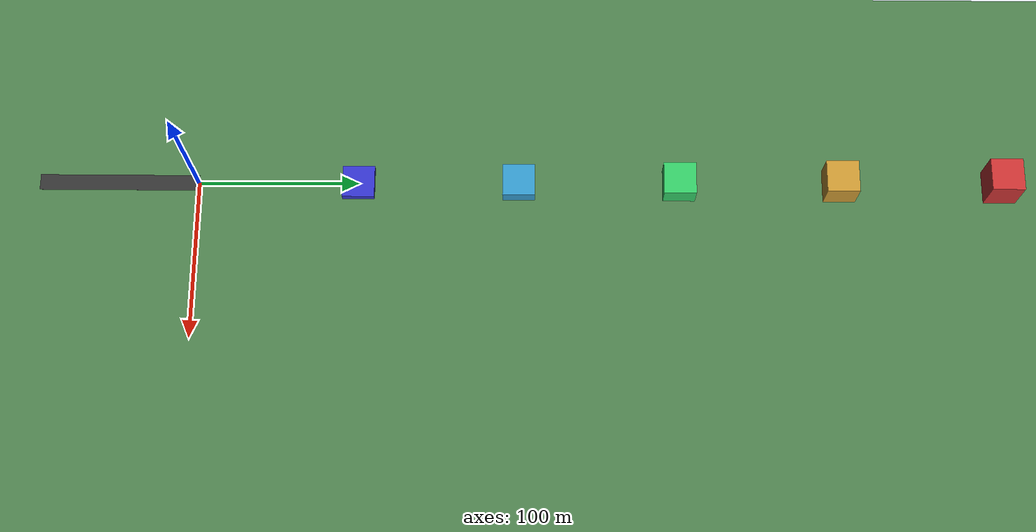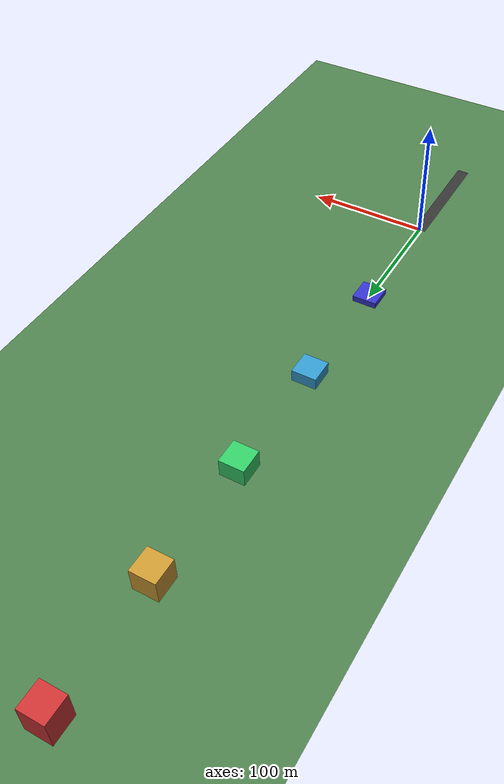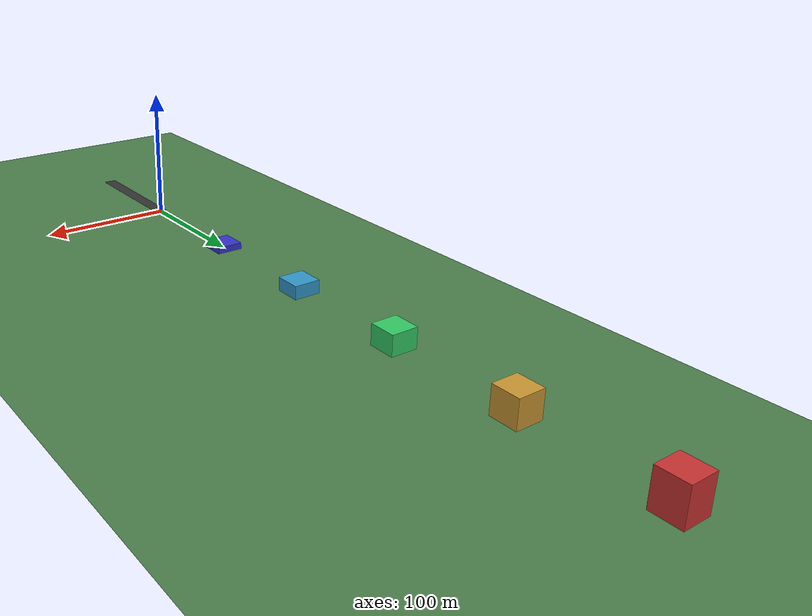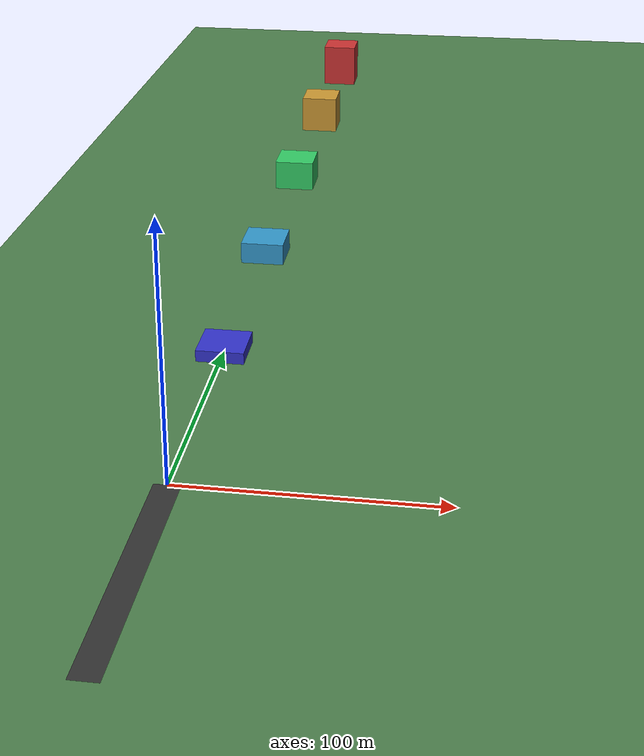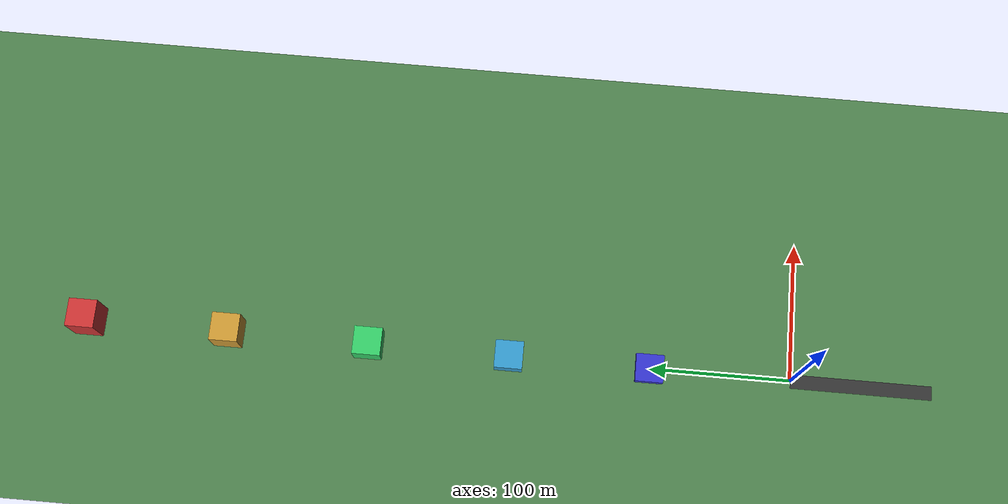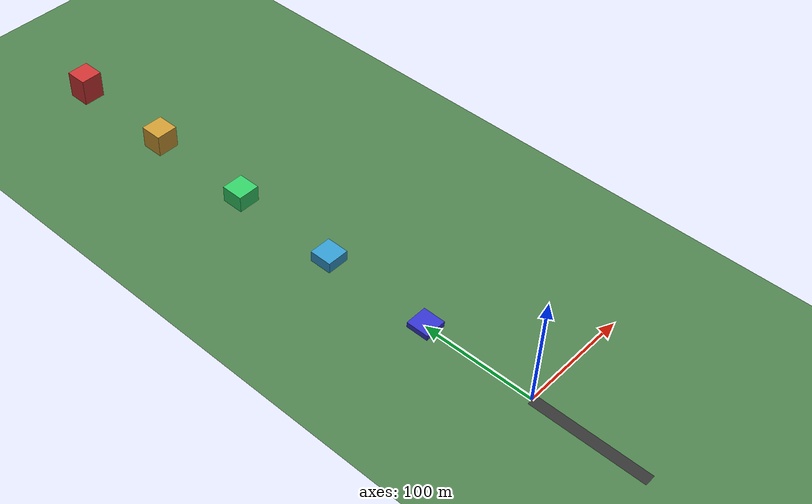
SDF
<sdf version="1.9">
 <world name="plane_lidar_staircase">
  <physics name="1ms" type="ignore">
   <max_step_size>0.001</max_step_size>
   <real_time_factor>1</real_time_factor>
  </physics>
  <plugin filename="gz-sim-physics-system" name="gz::sim::systems::Physics"/>
  <plugin filename="gz-sim-user-commands-system" name="gz::sim::systems::UserCommands"/>
  <plugin filename="gz-sim-scene-broadcaster-system" name="gz::sim::systems::SceneBroadcaster"/>
  <plugin filename="gz-sim-imu-system" name="gz::sim::systems::Imu"/>
  <plugin filename="gz-sim-navsat-system" name="gz::sim::systems::NavSat"/>
  <plugin filename="gz-sim-sensors-system" name="gz::sim::systems::Sensors">
   <render_engine>ogre2</render_engine>
  </plugin>
  <scene><ambient>1.0 1.0 1.0</ambient><background>0.8 0.8 0.8</background></scene>
  <spherical_coordinates>
   <latitude_deg>-35.363262</latitude_deg>
   <longitude_deg>149.165237</longitude_deg>
   <elevation>584</elevation>
   <heading_deg>0</heading_deg>
   <surface_model>EARTH_WGS84</surface_model>
  </spherical_coordinates>
  <light type="directional" name="sun">
   <pose>0 0 10 0 0 0</pose>
   <diffuse>0.8 0.8 0.8 1</diffuse>
   <specular>0.8 0.8 0.8 1</specular>
   <attenuation>
    <range>1000</range>
    <constant>0.9</constant>
    <linear>0.01</linear>
    <quadratic>0.001</quadratic>
   </attenuation>
   <direction>-0.5 0.1 -0.9</direction>
  </light>
  <model name="ground_plane">
   <static>true</static>
   <link name="link">
    <collision name="collision">
     <geometry><plane><normal>0 0 1</normal><size>5000 5000</size></plane></geometry>
    </collision>
    <visual name="visual">
     <geometry><plane><normal>0 0 1</normal><size>5000 5000</size></plane></geometry>
     <material>
      <ambient>0.3 0.5 0.3 1</ambient>
      <diffuse>0.3 0.5 0.3 1</diffuse>
      <specular>0.1 0.1 0.1 1</specular>
     </material>
    </visual>
   </link>
  </model>
  <model name="runway">
   <static>true</static>
   <pose>0 -50 0.01 0 0 0</pose>
   <link name="link">
    <visual name="visual">
     <geometry><box><size>10 100 0.01</size></box></geometry>
     <material><ambient>0.2 0.2 0.2 1</ambient><diffuse>0.2 0.2 0.2 1</diffuse></material>
    </visual>
   </link>
  </model>
  <model name="platform_1">
   <static>true</static>
   <pose>0 100 2.5 0 0 0</pose>
   <link name="link">
    <collision name="collision"><geometry><box><size>20 20 5</size></box></geometry></collision>
    <visual name="visual">
     <geometry><box><size>20 20 5</size></box></geometry>
     <material>
      <ambient>0.2 0.2 0.8 1</ambient>
      <diffuse>0.2 0.2 0.8 1</diffuse>
      <specular>0.1 0.1 0.1 1</specular>
     </material>
    </visual>
   </link>
  </model>
  <model name="platform_2">
   <static>true</static>
   <pose>0 200 5 0 0 0</pose>
   <link name="link">
    <collision name="collision"><geometry><box><size>20 20 10</size></box></geometry></collision>
    <visual name="visual">
     <geometry><box><size>20 20 10</size></box></geometry>
     <material>
      <ambient>0.2 0.6 0.8 1</ambient>
      <diffuse>0.2 0.6 0.8 1</diffuse>
      <specular>0.1 0.1 0.1 1</specular>
     </material>
    </visual>
   </link>
  </model>
  <model name="platform_3">
   <static>true</static>
   <pose>0 300 7.5 0 0 0</pose>
   <link name="link">
    <collision name="collision"><geometry><box><size>20 20 15</size></box></geometry></collision>
    <visual name="visual">
     <geometry><box><size>20 20 15</size></box></geometry>
     <material>
      <ambient>0.2 0.8 0.4 1</ambient>
      <diffuse>0.2 0.8 0.4 1</diffuse>
      <specular>0.1 0.1 0.1 1</specular>
     </material>
    </visual>
   </link>
  </model>
  <model name="platform_4">
   <static>true</static>
   <pose>0 400 10 0 0 0</pose>
   <link name="link">
    <collision name="collision"><geometry><box><size>20 20 20</size></box></geometry></collision>
    <visual name="visual">
     <geometry><box><size>20 20 20</size></box></geometry>
     <material>
      <ambient>0.8 0.6 0.2 1</ambient>
      <diffuse>0.8 0.6 0.2 1</diffuse>
      <specular>0.1 0.1 0.1 1</specular>
     </material>
    </visual>
   </link>
  </model>
  <model name="platform_5">
   <static>true</static>
   <pose>0 500 12.5 0 0 0</pose>
   <link name="link">
    <collision name="collision"><geometry><box><size>20 20 25</size></box></geometry></collision>
    <visual name="visual">
     <geometry><box><size>20 20 25</size></box></geometry>
     <material>
      <ambient>0.8 0.2 0.2 1</ambient>
      <diffuse>0.8 0.2 0.2 1</diffuse>
      <specular>0.1 0.1 0.1 1</specular>
     </material>
    </visual>
   </link>
  </model>
 </world>
</sdf>
